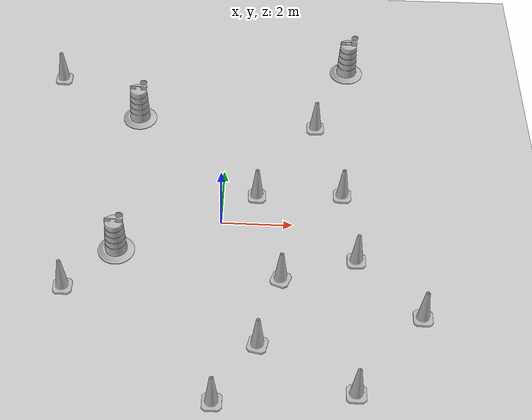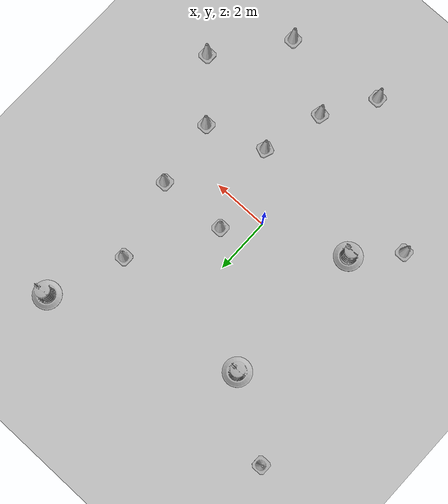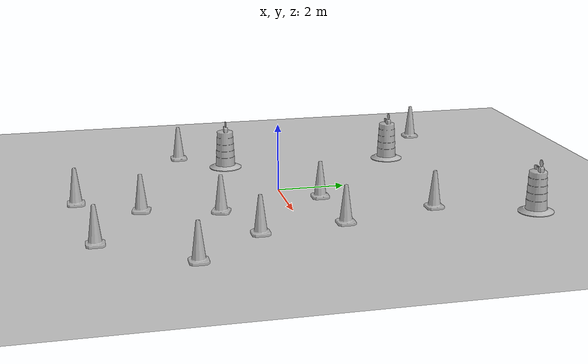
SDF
<sdf version="1.7">
 <world name="default">
  <light name="sun" type="directional">
   <pose>0 0 10 0 -0 0</pose>
   <diffuse>0.8 0.8 0.8 1</diffuse>
   <specular>0.2 0.2 0.2 1</specular>
   <attenuation>
    <range>1000</range>
    <constant>0.9</constant>
    <linear>0.01</linear>
    <quadratic>0.001</quadratic>
   </attenuation>
   <direction>-0.5 0.1 -0.9</direction>
   <spot><inner_angle>0</inner_angle><outer_angle>0</outer_angle><falloff>0</falloff></spot>
  </light>
  <model name="ground_plane">
   <static>1</static>
   <link name="link">
    <collision name="collision">
     <geometry><plane><normal>0 0 1</normal><size>100 100</size></plane></geometry>
     <surface>
      <contact><collide_bitmask>65535</collide_bitmask></contact>
      <friction><ode><mu>100</mu><mu2>50</mu2></ode></friction>
     </surface>
    </collision>
    <visual name="visual">
     <cast_shadows>0</cast_shadows>
     <geometry><plane><normal>0 0 1</normal><size>100 100</size></plane></geometry>
     <material>
      <script><uri>file://media/materials/scripts/gazebo.material</uri><name>Gazebo/Grey</name></script>
     </material>
    </visual>
   </link>
  </model>
  <gravity>0 0 -9.8</gravity>
  <magnetic_field>6e-06 2.3e-05 -4.2e-05</magnetic_field>
  <atmosphere type="adiabatic"/>
  <physics type="ode">
   <max_step_size>0.001</max_step_size>
   <real_time_factor>1</real_time_factor>
   <real_time_update_rate>1000</real_time_update_rate>
  </physics>
  <scene><ambient>0.4 0.4 0.4 1</ambient><background>0.7 0.7 0.7 1</background><shadows>1</shadows></scene>
  <audio><device>default</device></audio>
  <spherical_coordinates>
   <surface_model>EARTH_WGS84</surface_model>
   <latitude_deg>0</latitude_deg>
   <longitude_deg>0</longitude_deg>
   <elevation>0</elevation>
   <heading_deg>0</heading_deg>
  </spherical_coordinates>
  <model name="Construction Cone">
   <link name="link">
    <collision name="collision">
     <geometry>
      <mesh><scale>10 10 10</scale><uri>model://construction_cone/meshes/construction_cone.dae</uri></mesh>
     </geometry>
    </collision>
    <visual name="visual">
     <geometry>
      <mesh><scale>10 10 10</scale><uri>model://construction_cone/meshes/construction_cone.dae</uri></mesh>
     </geometry>
    </visual>
    <inertial>
     <inertia><ixx>1</ixx><ixy>0</ixy><ixz>0</ixz><iyy>1</iyy><iyz>0</iyz><izz>1</izz></inertia>
     <mass>1</mass>
    </inertial>
   </link>
   <pose>1.68885 -1.98212 -0 0 -1e-06 -0.365326</pose>
  </model>
  <model name="Construction Barrel">
   <link name="link">
    <inertial>
     <pose>0 0 0.4 0 -0 0</pose>
     <mass>500</mass>
     <inertia><ixx>51.2096</ixx><iyy>51.2096</iyy><izz>25</izz><ixy>0</ixy><ixz>0</ixz><iyz>0</iyz></inertia>
    </inertial>
    <collision name="collision">
     <geometry><mesh><uri>model://construction_barrel/meshes/construction_barrel.dae</uri></mesh></geometry>
    </collision>
    <visual name="visual">
     <geometry><mesh><uri>model://construction_barrel/meshes/construction_barrel.dae</uri></mesh></geometry>
    </visual>
   </link>
   <pose>-2.83802 -1.1393 -0 1e-06 -1e-06 -3e-05</pose>
  </model>
  <model name="Construction Cone_0">
   <link name="link">
    <collision name="collision">
     <geometry>
      <mesh><scale>10 10 10</scale><uri>model://construction_cone/meshes/construction_cone.dae</uri></mesh>
     </geometry>
    </collision>
    <visual name="visual">
     <geometry>
      <mesh><scale>10 10 10</scale><uri>model://construction_cone/meshes/construction_cone.dae</uri></mesh>
     </geometry>
    </visual>
    <inertial>
     <inertia><ixx>1</ixx><ixy>0</ixy><ixz>0</ixz><iyy>1</iyy><iyz>0</iyz><izz>1</izz></inertia>
     <mass>1</mass>
    </inertial>
   </link>
   <pose>0.05658 -5.92026 0 0 -0 0</pose>
  </model>
  <model name="Construction Cone_1">
   <link name="link">
    <collision name="collision">
     <geometry>
      <mesh><scale>10 10 10</scale><uri>model://construction_cone/meshes/construction_cone.dae</uri></mesh>
     </geometry>
    </collision>
    <visual name="visual">
     <geometry>
      <mesh><scale>10 10 10</scale><uri>model://construction_cone/meshes/construction_cone.dae</uri></mesh>
     </geometry>
    </visual>
    <inertial>
     <inertia><ixx>1</ixx><ixy>0</ixy><ixz>0</ixz><iyy>1</iyy><iyz>0</iyz><izz>1</izz></inertia>
     <mass>1</mass>
    </inertial>
   </link>
   <pose>-4.12478 -2.49592 0 0 -0 2.4e-05</pose>
  </model>
  <model name="Construction Cone_2">
   <link name="link">
    <collision name="collision">
     <geometry>
      <mesh><scale>10 10 10</scale><uri>model://construction_cone/meshes/construction_cone.dae</uri></mesh>
     </geometry>
    </collision>
    <visual name="visual">
     <geometry>
      <mesh><scale>10 10 10</scale><uri>model://construction_cone/meshes/construction_cone.dae</uri></mesh>
     </geometry>
    </visual>
    <inertial>
     <inertia><ixx>1</ixx><ixy>0</ixy><ixz>0</ixz><iyy>1</iyy><iyz>0</iyz><izz>1</izz></inertia>
     <mass>1</mass>
    </inertial>
   </link>
   <pose>1.12614 -4.1536 0 0 0 -0.220012</pose>
  </model>
  <model name="Construction Cone_3">
   <link name="link">
    <collision name="collision">
     <geometry>
      <mesh><scale>10 10 10</scale><uri>model://construction_cone/meshes/construction_cone.dae</uri></mesh>
     </geometry>
    </collision>
    <visual name="visual">
     <geometry>
      <mesh><scale>10 10 10</scale><uri>model://construction_cone/meshes/construction_cone.dae</uri></mesh>
     </geometry>
    </visual>
    <inertial>
     <inertia><ixx>1</ixx><ixy>0</ixy><ixz>0</ixz><iyy>1</iyy><iyz>0</iyz><izz>1</izz></inertia>
     <mass>1</mass>
    </inertial>
   </link>
   <pose>3.60246 -5.52964 0 0 -0 0.000432</pose>
  </model>
  <model name="Construction Cone_4">
   <link name="link">
    <collision name="collision">
     <geometry>
      <mesh><scale>10 10 10</scale><uri>model://construction_cone/meshes/construction_cone.dae</uri></mesh>
     </geometry>
    </collision>
    <visual name="visual">
     <geometry>
      <mesh><scale>10 10 10</scale><uri>model://construction_cone/meshes/construction_cone.dae</uri></mesh>
     </geometry>
    </visual>
    <inertial>
     <inertia><ixx>1</ixx><ixy>0</ixy><ixz>0</ixz><iyy>1</iyy><iyz>0</iyz><izz>1</izz></inertia>
     <mass>1</mass>
    </inertial>
   </link>
   <pose>2.6585 3.96499 0 0 -0 0</pose>
  </model>
  <model name="Construction Cone_5">
   <link name="link">
    <collision name="collision">
     <geometry>
      <mesh><scale>10 10 10</scale><uri>model://construction_cone/meshes/construction_cone.dae</uri></mesh>
     </geometry>
    </collision>
    <visual name="visual">
     <geometry>
      <mesh><scale>10 10 10</scale><uri>model://construction_cone/meshes/construction_cone.dae</uri></mesh>
     </geometry>
    </visual>
    <inertial>
     <inertia><ixx>1</ixx><ixy>0</ixy><ixz>0</ixz><iyy>1</iyy><iyz>0</iyz><izz>1</izz></inertia>
     <mass>1</mass>
    </inertial>
   </link>
   <pose>0.96599 1.04978 0 -0 -0 -0</pose>
  </model>
  <model name="Construction Cone_6">
   <link name="link">
    <collision name="collision">
     <geometry>
      <mesh><scale>10 10 10</scale><uri>model://construction_cone/meshes/construction_cone.dae</uri></mesh>
     </geometry>
    </collision>
    <visual name="visual">
     <geometry>
      <mesh><scale>10 10 10</scale><uri>model://construction_cone/meshes/construction_cone.dae</uri></mesh>
     </geometry>
    </visual>
    <inertial>
     <inertia><ixx>1</ixx><ixy>0</ixy><ixz>0</ixz><iyy>1</iyy><iyz>0</iyz><izz>1</izz></inertia>
     <mass>1</mass>
    </inertial>
   </link>
   <pose>3.73633 -1.25266 0 0 -0 0</pose>
  </model>
  <model name="Construction Cone_7">
   <link name="link">
    <collision name="collision">
     <geometry>
      <mesh><scale>10 10 10</scale><uri>model://construction_cone/meshes/construction_cone.dae</uri></mesh>
     </geometry>
    </collision>
    <visual name="visual">
     <geometry>
      <mesh><scale>10 10 10</scale><uri>model://construction_cone/meshes/construction_cone.dae</uri></mesh>
     </geometry>
    </visual>
    <inertial>
     <inertia><ixx>1</ixx><ixy>0</ixy><ixz>0</ixz><iyy>1</iyy><iyz>0</iyz><izz>1</izz></inertia>
     <mass>1</mass>
    </inertial>
   </link>
   <pose>5.41053 -3.11234 0 0 -0 0</pose>
  </model>
  <model name="Construction Cone_8">
   <link name="link">
    <collision name="collision">
     <geometry>
      <mesh><scale>10 10 10</scale><uri>model://construction_cone/meshes/construction_cone.dae</uri></mesh>
     </geometry>
    </collision>
    <visual name="visual">
     <geometry>
      <mesh><scale>10 10 10</scale><uri>model://construction_cone/meshes/construction_cone.dae</uri></mesh>
     </geometry>
    </visual>
    <inertial>
     <inertia><ixx>1</ixx><ixy>0</ixy><ixz>0</ixz><iyy>1</iyy><iyz>0</iyz><izz>1</izz></inertia>
     <mass>1</mass>
    </inertial>
   </link>
   <pose>-5.30645 5.90561 -0 0 -1e-06 0</pose>
  </model>
  <model name="Construction Barrel_0">
   <link name="link">
    <inertial>
     <pose>0 0 0.4 0 -0 0</pose>
     <mass>500</mass>
     <inertia><ixx>51.2096</ixx><iyy>51.2096</iyy><izz>25</izz><ixy>0</ixy><ixz>0</ixz><iyz>0</iyz></inertia>
    </inertial>
    <collision name="collision">
     <geometry><mesh><uri>model://construction_barrel/meshes/construction_barrel.dae</uri></mesh></geometry>
    </collision>
    <visual name="visual">
     <geometry><mesh><uri>model://construction_barrel/meshes/construction_barrel.dae</uri></mesh></geometry>
    </visual>
   </link>
   <pose>-2.70988 4.21521 -2e-06 7e-06 -2e-06 -1e-05</pose>
  </model>
  <model name="Construction Cone_9">
   <link name="link">
    <collision name="collision">
     <geometry>
      <mesh><scale>10 10 10</scale><uri>model://construction_cone/meshes/construction_cone.dae</uri></mesh>
     </geometry>
    </collision>
    <visual name="visual">
     <geometry>
      <mesh><scale>10 10 10</scale><uri>model://construction_cone/meshes/construction_cone.dae</uri></mesh>
     </geometry>
    </visual>
    <inertial>
     <inertia><ixx>1</ixx><ixy>0</ixy><ixz>0</ixz><iyy>1</iyy><iyz>0</iyz><izz>1</izz></inertia>
     <mass>1</mass>
    </inertial>
   </link>
   <pose>3.40801 1.16449 0 0 -0 0</pose>
  </model>
  <model name="Construction Barrel_1">
   <link name="link">
    <inertial>
     <pose>0 0 0.4 0 -0 0</pose>
     <mass>500</mass>
     <inertia><ixx>51.2096</ixx><iyy>51.2096</iyy><izz>25</izz><ixy>0</ixy><ixz>0</ixz><iyz>0</iyz></inertia>
    </inertial>
    <collision name="collision">
     <geometry><mesh><uri>model://construction_barrel/meshes/construction_barrel.dae</uri></mesh></geometry>
    </collision>
    <visual name="visual">
     <geometry><mesh><uri>model://construction_barrel/meshes/construction_barrel.dae</uri></mesh></geometry>
    </visual>
   </link>
   <pose>3.66533 6.6193 0 2e-06 -0 -6e-06</pose>
  </model>
 </world>
</sdf>
